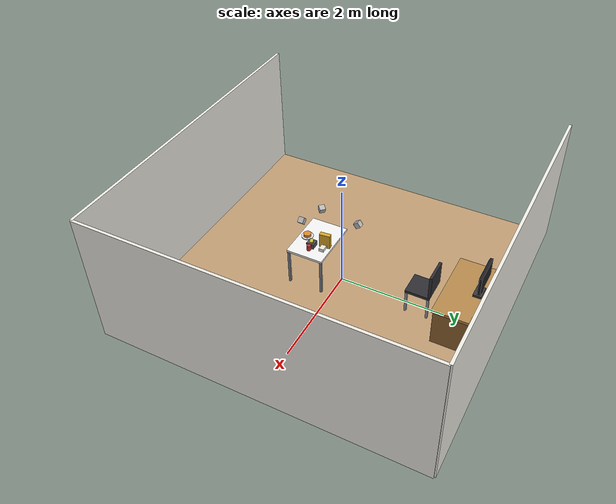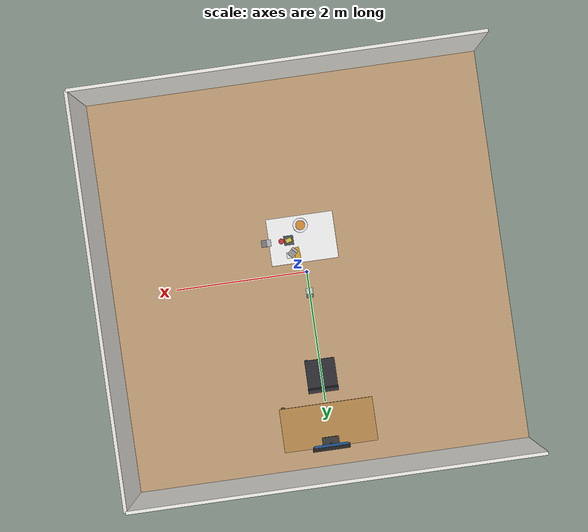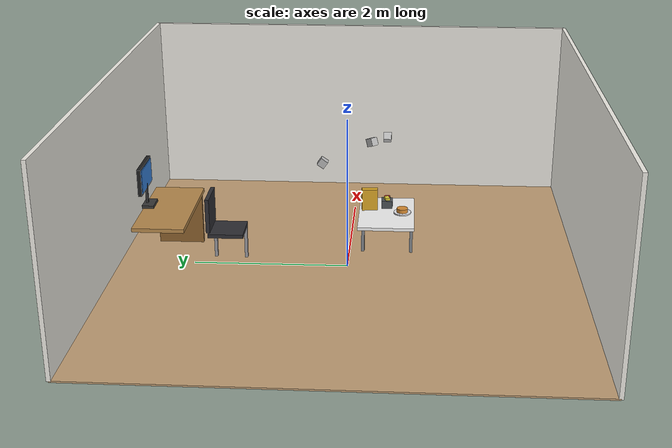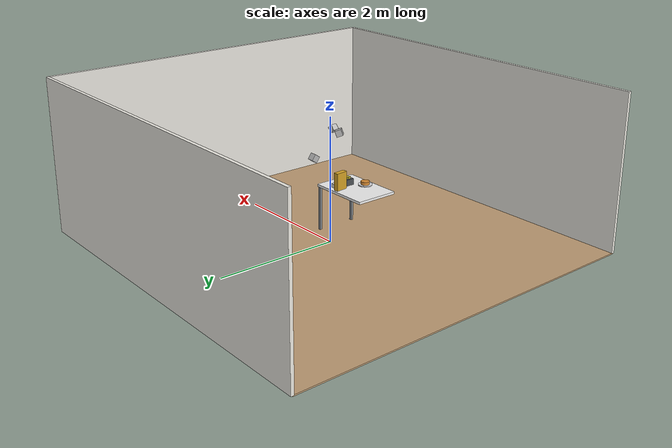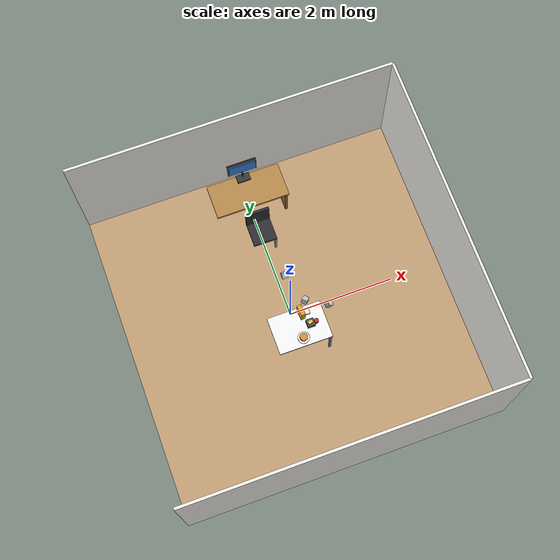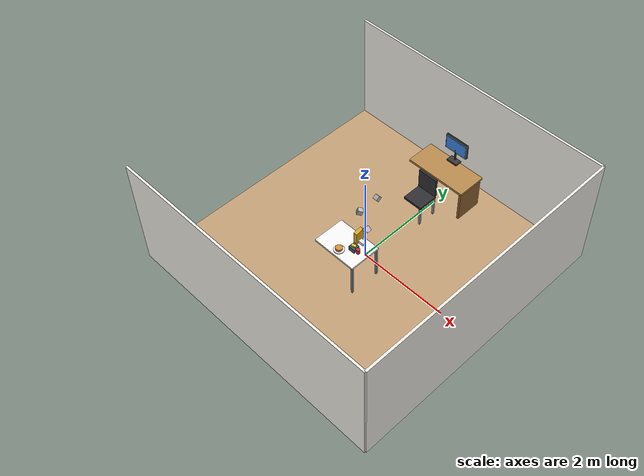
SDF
<sdf version="1.10">
 <world name="bps_room">
  <model name="floor">
   <static>true</static>
   <link name="link">
    <collision name="collision"><geometry><box><size>6 6 0.02</size></box></geometry></collision>
    <visual name="visual">
     <geometry><box><size>6 6 0.02</size></box></geometry>
     <material>
      <ambient>0.75999999 0.620000005 0.460000008 1</ambient>
      <diffuse>0.75999999 0.620000005 0.460000008 1</diffuse>
     </material>
    </visual>
    <inertial>
     <mass>1</mass>
     <inertia><ixx>1</ixx><ixy>0</ixy><ixz>0</ixz><iyy>1</iyy><iyz>0</iyz><izz>1</izz></inertia>
    </inertial>
   </link>
  </model>
  <model name="wall_north">
   <static>true</static>
   <pose>0 3 1.25 0 0 0</pose>
   <link name="link">
    <collision name="collision">
     <geometry><box><size>6 0.050000000000000003 2.5</size></box></geometry>
    </collision>
    <visual name="visual">
     <geometry><box><size>6 0.050000000000000003 2.5</size></box></geometry>
     <material>
      <ambient>0.949999988 0.939999998 0.910000026 1</ambient>
      <diffuse>0.949999988 0.939999998 0.910000026 1</diffuse>
     </material>
    </visual>
    <inertial>
     <mass>1</mass>
     <inertia><ixx>1</ixx><ixy>0</ixy><ixz>0</ixz><iyy>1</iyy><iyz>0</iyz><izz>1</izz></inertia>
    </inertial>
   </link>
  </model>
  <model name="wall_south">
   <static>true</static>
   <pose>0 -3 1.25 0 0 0</pose>
   <link name="link">
    <collision name="collision">
     <geometry><box><size>6 0.050000000000000003 2.5</size></box></geometry>
    </collision>
    <visual name="visual">
     <geometry><box><size>6 0.050000000000000003 2.5</size></box></geometry>
     <material>
      <ambient>0.949999988 0.939999998 0.910000026 1</ambient>
      <diffuse>0.949999988 0.939999998 0.910000026 1</diffuse>
     </material>
    </visual>
    <inertial>
     <mass>1</mass>
     <inertia><ixx>1</ixx><ixy>0</ixy><ixz>0</ixz><iyy>1</iyy><iyz>0</iyz><izz>1</izz></inertia>
    </inertial>
   </link>
  </model>
  <model name="wall_east">
   <static>true</static>
   <pose>3 0 1.25 0 0 0</pose>
   <link name="link">
    <collision name="collision">
     <geometry><box><size>0.050000000000000003 6 2.5</size></box></geometry>
    </collision>
    <visual name="visual">
     <geometry><box><size>0.050000000000000003 6 2.5</size></box></geometry>
     <material>
      <ambient>0.930000007 0.920000017 0.889999986 1</ambient>
      <diffuse>0.930000007 0.920000017 0.889999986 1</diffuse>
     </material>
    </visual>
    <inertial>
     <mass>1</mass>
     <inertia><ixx>1</ixx><ixy>0</ixy><ixz>0</ixz><iyy>1</iyy><iyz>0</iyz><izz>1</izz></inertia>
    </inertial>
   </link>
  </model>
  <model name="desk">
   <static>true</static>
   <pose>0 2.2999999999999998 0.75 0 0 0</pose>
   <link name="link">
    <collision name="collision">
     <geometry><box><size>1.3999999999999999 0.65000000000000002 0.050000000000000003</size></box></geometry>
    </collision>
    <visual name="visual">
     <geometry><box><size>1.3999999999999999 0.65000000000000002 0.050000000000000003</size></box></geometry>
     <material>
      <ambient>0.720000029 0.540000021 0.300000012 1</ambient>
      <diffuse>0.720000029 0.540000021 0.300000012 1</diffuse>
     </material>
    </visual>
    <inertial>
     <mass>1</mass>
     <inertia><ixx>1</ixx><ixy>0</ixy><ixz>0</ixz><iyy>1</iyy><iyz>0</iyz><izz>1</izz></inertia>
    </inertial>
   </link>
  </model>
  <model name="desk_leg_right">
   <static>true</static>
   <pose>0.65000000000000002 2.2999999999999998 0.375 0 0 0</pose>
   <link name="link">
    <collision name="collision">
     <geometry><box><size>0.050000000000000003 0.59999999999999998 0.75</size></box></geometry>
    </collision>
    <visual name="visual">
     <geometry><box><size>0.050000000000000003 0.59999999999999998 0.75</size></box></geometry>
     <material>
      <ambient>0.550000012 0.379999995 0.180000007 1</ambient>
      <diffuse>0.550000012 0.379999995 0.180000007 1</diffuse>
     </material>
    </visual>
    <inertial>
     <mass>1</mass>
     <inertia><ixx>1</ixx><ixy>0</ixy><ixz>0</ixz><iyy>1</iyy><iyz>0</iyz><izz>1</izz></inertia>
    </inertial>
   </link>
  </model>
  <model name="monitor_base">
   <static>true</static>
   <pose>0 2.5499999999999998 0.81999999999999995 0 0 0</pose>
   <link name="link">
    <collision name="collision">
     <geometry><box><size>0.25 0.14999999999999999 0.040000000000000001</size></box></geometry>
    </collision>
    <visual name="visual">
     <geometry><box><size>0.25 0.14999999999999999 0.040000000000000001</size></box></geometry>
     <material>
      <ambient>0.219999999 0.219999999 0.219999999 1</ambient>
      <diffuse>0.219999999 0.219999999 0.219999999 1</diffuse>
     </material>
    </visual>
    <inertial>
     <mass>1</mass>
     <inertia><ixx>1</ixx><ixy>0</ixy><ixz>0</ixz><iyy>1</iyy><iyz>0</iyz><izz>1</izz></inertia>
    </inertial>
   </link>
  </model>
  <model name="monitor_stand">
   <static>true</static>
   <pose>0 2.5800000000000001 0.96999999999999997 0 0 0</pose>
   <link name="link">
    <collision name="collision">
     <geometry><box><size>0.029999999999999999 0.029999999999999999 0.26000000000000001</size></box></geometry>
    </collision>
    <visual name="visual">
     <geometry><box><size>0.029999999999999999 0.029999999999999999 0.26000000000000001</size></box></geometry>
     <material>
      <ambient>0.219999999 0.219999999 0.219999999 1</ambient>
      <diffuse>0.219999999 0.219999999 0.219999999 1</diffuse>
     </material>
    </visual>
    <inertial>
     <mass>1</mass>
     <inertia><ixx>1</ixx><ixy>0</ixy><ixz>0</ixz><iyy>1</iyy><iyz>0</iyz><izz>1</izz></inertia>
    </inertial>
   </link>
  </model>
  <model name="monitor_screen">
   <static>true</static>
   <pose>0 2.6000000000000001 1.2 0 0 0</pose>
   <link name="link">
    <collision name="collision">
     <geometry><box><size>0.55000000000000004 0.050000000000000003 0.34999999999999998</size></box></geometry>
    </collision>
    <visual name="visual">
     <geometry><box><size>0.55000000000000004 0.050000000000000003 0.34999999999999998</size></box></geometry>
     <material>
      <ambient>0.119999997 0.119999997 0.119999997 1</ambient>
      <diffuse>0.119999997 0.119999997 0.119999997 1</diffuse>
     </material>
    </visual>
    <inertial>
     <mass>1</mass>
     <inertia><ixx>1</ixx><ixy>0</ixy><ixz>0</ixz><iyy>1</iyy><iyz>0</iyz><izz>1</izz></inertia>
    </inertial>
   </link>
  </model>
  <model name="monitor_face">
   <static>true</static>
   <pose>0 2.5699999999999998 1.2 0 0 0</pose>
   <link name="link">
    <visual name="visual">
     <geometry><box><size>0.5 0.01 0.29999999999999999</size></box></geometry>
     <material>
      <ambient>0.219999999 0.519999981 0.879999995 1</ambient>
      <diffuse>0.219999999 0.519999981 0.879999995 1</diffuse>
      <emissive>0.100000001 0.25 0.449999988 1</emissive>
     </material>
    </visual>
    <inertial>
     <mass>1</mass>
     <inertia><ixx>1</ixx><ixy>0</ixy><ixz>0</ixz><iyy>1</iyy><iyz>0</iyz><izz>1</izz></inertia>
    </inertial>
   </link>
  </model>
  <model name="chair_seat">
   <static>true</static>
   <pose>0 1.55 0.47999999999999998 0 0 0</pose>
   <link name="link">
    <collision name="collision">
     <geometry><box><size>0.45000000000000001 0.45000000000000001 0.050000000000000003</size></box></geometry>
    </collision>
    <visual name="visual">
     <geometry><box><size>0.45000000000000001 0.45000000000000001 0.050000000000000003</size></box></geometry>
     <material>
      <ambient>0.180000007 0.180000007 0.200000003 1</ambient>
      <diffuse>0.180000007 0.180000007 0.200000003 1</diffuse>
     </material>
    </visual>
    <inertial>
     <mass>1</mass>
     <inertia><ixx>1</ixx><ixy>0</ixy><ixz>0</ixz><iyy>1</iyy><iyz>0</iyz><izz>1</izz></inertia>
    </inertial>
   </link>
  </model>
  <model name="chair_back">
   <static>true</static>
   <pose>0 1.77 0.75 0 0 0</pose>
   <link name="link">
    <collision name="collision">
     <geometry><box><size>0.45000000000000001 0.050000000000000003 0.45000000000000001</size></box></geometry>
    </collision>
    <visual name="visual">
     <geometry><box><size>0.45000000000000001 0.050000000000000003 0.45000000000000001</size></box></geometry>
     <material>
      <ambient>0.180000007 0.180000007 0.200000003 1</ambient>
      <diffuse>0.180000007 0.180000007 0.200000003 1</diffuse>
     </material>
    </visual>
    <inertial>
     <mass>1</mass>
     <inertia><ixx>1</ixx><ixy>0</ixy><ixz>0</ixz><iyy>1</iyy><iyz>0</iyz><izz>1</izz></inertia>
    </inertial>
   </link>
  </model>
  <model name="chair_leg_fr">
   <static>true</static>
   <pose>0.20000000000000001 1.3500000000000001 0.23999999999999999 0 0 0</pose>
   <link name="link">
    <collision name="collision">
     <geometry><box><size>0.040000000000000001 0.040000000000000001 0.47999999999999998</size></box></geometry>
    </collision>
    <visual name="visual">
     <geometry><box><size>0.040000000000000001 0.040000000000000001 0.47999999999999998</size></box></geometry>
     <material>
      <ambient>0.600000024 0.600000024 0.620000005 1</ambient>
      <diffuse>0.600000024 0.600000024 0.620000005 1</diffuse>
     </material>
    </visual>
    <inertial>
     <mass>1</mass>
     <inertia><ixx>1</ixx><ixy>0</ixy><ixz>0</ixz><iyy>1</iyy><iyz>0</iyz><izz>1</izz></inertia>
    </inertial>
   </link>
  </model>
  <model name="chair_leg_br">
   <static>true</static>
   <pose>0.20000000000000001 1.75 0.23999999999999999 0 0 0</pose>
   <link name="link">
    <collision name="collision">
     <geometry><box><size>0.040000000000000001 0.040000000000000001 0.47999999999999998</size></box></geometry>
    </collision>
    <visual name="visual">
     <geometry><box><size>0.040000000000000001 0.040000000000000001 0.47999999999999998</size></box></geometry>
     <material>
      <ambient>0.600000024 0.600000024 0.620000005 1</ambient>
      <diffuse>0.600000024 0.600000024 0.620000005 1</diffuse>
     </material>
    </visual>
    <inertial>
     <mass>1</mass>
     <inertia><ixx>1</ixx><ixy>0</ixy><ixz>0</ixz><iyy>1</iyy><iyz>0</iyz><izz>1</izz></inertia>
    </inertial>
   </link>
  </model>
  <model name="experiment_table">
   <static>true</static>
   <pose>0 -0.5 0.75 0 0 0</pose>
   <link name="link">
    <collision name="collision">
     <geometry><box><size>1 0.69999999999999996 0.040000000000000001</size></box></geometry>
    </collision>
    <visual name="visual">
     <geometry><box><size>1 0.69999999999999996 0.040000000000000001</size></box></geometry>
     <material>
      <ambient>0.959999979 0.959999979 0.959999979 1</ambient>
      <diffuse>0.959999979 0.959999979 0.959999979 1</diffuse>
     </material>
    </visual>
    <inertial>
     <mass>1</mass>
     <inertia><ixx>1</ixx><ixy>0</ixy><ixz>0</ixz><iyy>1</iyy><iyz>0</iyz><izz>1</izz></inertia>
    </inertial>
   </link>
  </model>
  <model name="table_leg_fr">
   <static>true</static>
   <pose>0.46999999999999997 -0.81999999999999995 0.375 0 0 0</pose>
   <link name="link">
    <collision name="collision">
     <geometry><box><size>0.040000000000000001 0.040000000000000001 0.75</size></box></geometry>
    </collision>
    <visual name="visual">
     <geometry><box><size>0.040000000000000001 0.040000000000000001 0.75</size></box></geometry>
     <material>
      <ambient>0.5 0.519999981 0.540000021 1</ambient>
      <diffuse>0.5 0.519999981 0.540000021 1</diffuse>
     </material>
    </visual>
    <inertial>
     <mass>1</mass>
     <inertia><ixx>1</ixx><ixy>0</ixy><ixz>0</ixz><iyy>1</iyy><iyz>0</iyz><izz>1</izz></inertia>
    </inertial>
   </link>
  </model>
  <model name="table_leg_br">
   <static>true</static>
   <pose>0.46999999999999997 -0.17999999999999999 0.375 0 0 0</pose>
   <link name="link">
    <collision name="collision">
     <geometry><box><size>0.040000000000000001 0.040000000000000001 0.75</size></box></geometry>
    </collision>
    <visual name="visual">
     <geometry><box><size>0.040000000000000001 0.040000000000000001 0.75</size></box></geometry>
     <material>
      <ambient>0.5 0.519999981 0.540000021 1</ambient>
      <diffuse>0.5 0.519999981 0.540000021 1</diffuse>
     </material>
    </visual>
    <inertial>
     <mass>1</mass>
     <inertia><ixx>1</ixx><ixy>0</ixy><ixz>0</ixz><iyy>1</iyy><iyz>0</iyz><izz>1</izz></inertia>
    </inertial>
   </link>
  </model>
  <model name="obj_cereal_box">
   <static>false</static>
   <pose>0.10000000000000001 -0.28000000000000003 0.91000000000000003 0 0 0.099999999999999978</pose>
   <link name="link">
    <collision name="collision">
     <geometry><box><size>0.080000000000000002 0.20000000000000001 0.28000000000000003</size></box></geometry>
    </collision>
    <visual name="visual">
     <geometry><box><size>0.080000000000000002 0.20000000000000001 0.28000000000000003</size></box></geometry>
     <material>
      <ambient>0.850000024 0.649999976 0.150000006 1</ambient>
      <diffuse>0.850000024 0.649999976 0.150000006 1</diffuse>
      <specular>0.200000003 0.200000003 0.200000003 1</specular>
     </material>
     <plugin name="gz::sim::systems::Label" filename="gz-sim-label-system"><label>1</label></plugin>
    </visual>
    <inertial>
     <mass>1</mass>
     <inertia><ixx>1</ixx><ixy>0</ixy><ixz>0</ixz><iyy>1</iyy><iyz>0</iyz><izz>1</izz></inertia>
    </inertial>
    <sensor name="obj_cereal_box_contact_sensor" type="contact">
     <contact><collision>collision</collision></contact>
     <update_rate>30</update_rate>
     <always_on>true</always_on>
    </sensor>
   </link>
  </model>
  <model name="obj_tissue_box">
   <static>false</static>
   <pose>0.20000000000000001 -0.28000000000000003 0.80000000000000004 0 0 0</pose>
   <link name="link">
    <collision name="collision">
     <geometry><box><size>0.12 0.089999999999999997 0.059999999999999998</size></box></geometry>
    </collision>
    <visual name="visual">
     <geometry><box><size>0.12 0.089999999999999997 0.059999999999999998</size></box></geometry>
     <material>
      <ambient>0.920000017 0.920000017 0.879999995 1</ambient>
      <diffuse>0.920000017 0.920000017 0.879999995 1</diffuse>
      <specular>0.200000003 0.200000003 0.200000003 1</specular>
     </material>
     <plugin name="gz::sim::systems::Label" filename="gz-sim-label-system"><label>2</label></plugin>
    </visual>
    <inertial>
     <mass>1</mass>
     <inertia><ixx>1</ixx><ixy>0</ixy><ixz>0</ixz><iyy>1</iyy><iyz>0</iyz><izz>1</izz></inertia>
    </inertial>
    <sensor name="obj_tissue_box_contact_sensor" type="contact">
     <contact><collision>collision</collision></contact>
     <update_rate>30</update_rate>
     <always_on>true</always_on>
    </sensor>
   </link>
  </model>
  <model name="obj_mug">
   <static>false</static>
   <pose>0.31 -0.5 0.81999999999999995 0 0 0</pose>
   <link name="link">
    <collision name="collision">
     <geometry>
      <cylinder><radius>0.040000000000000001</radius><length>0.10000000000000001</length></cylinder>
     </geometry>
    </collision>
    <visual name="visual">
     <geometry>
      <cylinder><radius>0.040000000000000001</radius><length>0.10000000000000001</length></cylinder>
     </geometry>
     <material>
      <ambient>0.779999971 0.180000007 0.200000003 1</ambient>
      <diffuse>0.779999971 0.180000007 0.200000003 1</diffuse>
      <specular>0.300000012 0.300000012 0.300000012 1</specular>
     </material>
     <plugin name="gz::sim::systems::Label" filename="gz-sim-label-system"><label>6</label></plugin>
    </visual>
    <inertial>
     <mass>1</mass>
     <inertia><ixx>1</ixx><ixy>0</ixy><ixz>0</ixz><iyy>1</iyy><iyz>0</iyz><izz>1</izz></inertia>
    </inertial>
    <sensor name="obj_mug_contact_sensor" type="contact">
     <contact><collision>collision</collision></contact>
     <update_rate>30</update_rate>
     <always_on>true</always_on>
    </sensor>
   </link>
  </model>
  <model name="obj_bowl">
   <static>false</static>
   <pose>0 -0.69999999999999996 0.81000000000000005 0 0 0</pose>
   <link name="link">
    <collision name="collision">
     <geometry>
      <cylinder><radius>0.070000000000000007</radius><length>0.050000000000000003</length></cylinder>
     </geometry>
    </collision>
    <visual name="visual">
     <geometry>
      <cylinder><radius>0.070000000000000007</radius><length>0.050000000000000003</length></cylinder>
     </geometry>
     <material>
      <ambient>0.850000024 0.550000012 0.200000003 1</ambient>
      <diffuse>0.850000024 0.550000012 0.200000003 1</diffuse>
      <specular>0.300000012 0.300000012 0.300000012 1</specular>
     </material>
     <plugin name="gz::sim::systems::Label" filename="gz-sim-label-system"><label>7</label></plugin>
    </visual>
    <inertial>
     <mass>1</mass>
     <inertia><ixx>1</ixx><ixy>0</ixy><ixz>0</ixz><iyy>1</iyy><iyz>0</iyz><izz>1</izz></inertia>
    </inertial>
    <sensor name="obj_bowl_contact_sensor" type="contact">
     <contact><collision>collision</collision></contact>
     <update_rate>30</update_rate>
     <always_on>true</always_on>
    </sensor>
   </link>
  </model>
  <model name="obj_plate">
   <static>false</static>
   <pose>0 -0.69999999999999996 0.77749999999999997 0 0 0</pose>
   <link name="link">
    <collision name="collision">
     <geometry><cylinder><radius>0.11</radius><length>0.014999999999999999</length></cylinder></geometry>
    </collision>
    <visual name="visual">
     <geometry><cylinder><radius>0.11</radius><length>0.014999999999999999</length></cylinder></geometry>
     <material>
      <ambient>0.899999976 0.899999976 0.920000017 1</ambient>
      <diffuse>0.899999976 0.899999976 0.920000017 1</diffuse>
      <specular>0.300000012 0.300000012 0.300000012 1</specular>
     </material>
     <plugin name="gz::sim::systems::Label" filename="gz-sim-label-system"><label>8</label></plugin>
    </visual>
    <inertial>
     <mass>1</mass>
     <inertia><ixx>1</ixx><ixy>0</ixy><ixz>0</ixz><iyy>1</iyy><iyz>0</iyz><izz>1</izz></inertia>
    </inertial>
    <sensor name="obj_plate_contact_sensor" type="contact">
     <contact><collision>collision</collision></contact>
     <update_rate>30</update_rate>
     <always_on>true</always_on>
    </sensor>
   </link>
  </model>
  <model name="obj_sponge">
   <static>false</static>
   <pose>0.20000000000000001 -0.5 0.88500000000000001 0 0 0.3000000000000001</pose>
   <link name="link">
    <collision name="collision">
     <geometry><box><size>0.089999999999999997 0.059999999999999998 0.029999999999999999</size></box></geometry>
    </collision>
    <visual name="visual">
     <geometry><box><size>0.089999999999999997 0.059999999999999998 0.029999999999999999</size></box></geometry>
     <material>
      <ambient>0.850000024 0.779999971 0.200000003 1</ambient>
      <diffuse>0.850000024 0.779999971 0.200000003 1</diffuse>
      <specular>0.100000001 0.100000001 0.100000001 1</specular>
     </material>
     <plugin name="gz::sim::systems::Label" filename="gz-sim-label-system"><label>12</label></plugin>
    </visual>
    <inertial>
     <mass>1</mass>
     <inertia><ixx>1</ixx><ixy>0</ixy><ixz>0</ixz><iyy>1</iyy><iyz>0</iyz><izz>1</izz></inertia>
    </inertial>
    <sensor name="obj_sponge_contact_sensor" type="contact">
     <contact><collision>collision</collision></contact>
     <update_rate>30</update_rate>
     <always_on>true</always_on>
    </sensor>
   </link>
  </model>
  <model name="obj_container">
   <static>false</static>
   <pose>0.20000000000000001 -0.5 0.81999999999999995 0 0 0</pose>
   <link name="link">
    <collision name="collision">
     <geometry><box><size>0.14000000000000001 0.14000000000000001 0.10000000000000001</size></box></geometry>
    </collision>
    <visual name="visual">
     <geometry><box><size>0.14000000000000001 0.14000000000000001 0.10000000000000001</size></box></geometry>
     <material>
      <ambient>0.300000012 0.319999993 0.340000004 1</ambient>
      <diffuse>0.300000012 0.319999993 0.340000004 1</diffuse>
      <specular>0.200000003 0.200000003 0.200000003 1</specular>
     </material>
     <plugin name="gz::sim::systems::Label" filename="gz-sim-label-system"><label>15</label></plugin>
    </visual>
    <inertial>
     <mass>1</mass>
     <inertia><ixx>1</ixx><ixy>0</ixy><ixz>0</ixz><iyy>1</iyy><iyz>0</iyz><izz>1</izz></inertia>
    </inertial>
    <sensor name="obj_container_contact_sensor" type="contact">
     <contact><collision>collision</collision></contact>
     <update_rate>30</update_rate>
     <always_on>true</always_on>
    </sensor>
   </link>
  </model>
  <model name="depth_camera_v2">
   <static>true</static>
   <pose>0.5941209430198727 -0.43866666666666665 1.6127111097856446 0.0 0.8726646259971648 3.141592653589793</pose>
   <link name="link">
    <pose>0.050000000000000003 0.050000000000000003 0.050000000000000003 0 0 0</pose>
    <inertial>
     <mass>0.10000000000000001</mass>
     <inertia>
      <ixx>0.00016666700000000001</ixx>
      <iyy>0.00016666700000000001</iyy>
      <izz>0.00016666700000000001</izz>
      <ixy>0</ixy>
      <ixz>0</ixz>
      <iyz>0</iyz>
     </inertia>
    </inertial>
    <collision name="collision">
     <geometry><box><size>0.10000000000000001 0.10000000000000001 0.10000000000000001</size></box></geometry>
    </collision>
    <visual name="visual">
     <geometry><box><size>0.10000000000000001 0.10000000000000001 0.10000000000000001</size></box></geometry>
    </visual>
    <sensor name="depth_camera2" type="depth_camera">
     <topic>depth_camera_v2</topic>
     <update_rate>10</update_rate>
     <enable_metrics>false</enable_metrics>
     <camera>
      <horizontal_fov>1.2</horizontal_fov>
      <image>
       <width>640</width>
       <height>480</height>
       <format>R_FLOAT32</format>
       <anti_aliasing>4</anti_aliasing>
      </image>
      <camera_info_topic>__default__</camera_info_topic>
      <triggered>false</triggered>
      <clip><near>0.10000000000000001</near><far>2</far></clip>
      <save enabled="false"><path>__default__</path></save>
      <visibility_mask>4294967295</visibility_mask>
      <noise><type>none</type><mean>0</mean><stddev>0</stddev></noise>
      <distortion><k1>0</k1><k2>0</k2><k3>0</k3><p1>0</p1><p2>0</p2><center>0.5 0.5</center></distortion>
      <lens>
       <type>stereographic</type>
       <scale_to_hfov>true</scale_to_hfov>
       <cutoff_angle>1.5707963267948966</cutoff_angle>
       <env_texture_size>256</env_texture_size>
      </lens>
     </camera>
    </sensor>
    <sensor name="rgb_camera2" type="camera">
     <topic>rgb_camera_v2</topic>
     <update_rate>10</update_rate>
     <enable_metrics>false</enable_metrics>
     <camera>
      <horizontal_fov>1.2</horizontal_fov>
      <image><width>640</width><height>480</height><format>RGB_INT8</format><anti_aliasing>4</anti_aliasing></image>
      <camera_info_topic>__default__</camera_info_topic>
      <triggered>false</triggered>
      <clip><near>0.10000000000000001</near><far>2</far></clip>
      <save enabled="false"><path>__default__</path></save>
      <visibility_mask>4294967295</visibility_mask>
      <noise><type>none</type><mean>0</mean><stddev>0</stddev></noise>
      <distortion><k1>0</k1><k2>0</k2><k3>0</k3><p1>0</p1><p2>0</p2><center>0.5 0.5</center></distortion>
      <lens>
       <type>stereographic</type>
       <scale_to_hfov>true</scale_to_hfov>
       <cutoff_angle>1.5707963267948966</cutoff_angle>
       <env_texture_size>256</env_texture_size>
      </lens>
     </camera>
    </sensor>
    <sensor name="semantic_camera2" type="segmentation_camera">
     <topic>semantic_camera_v2</topic>
     <update_rate>10</update_rate>
     <enable_metrics>false</enable_metrics>
     <camera>
      <horizontal_fov>1.2</horizontal_fov>
      <image><width>640</width><height>480</height></image>
      <clip><near>0.1</near><far>100</far></clip>
      <segmentation_type>semantic</segmentation_type>
     </camera>
    </sensor>
   </link>
  </model>
  <model name="depth_camera_v3">
   <static>true</static>
   <pose>-0.048666666666666615 0.38048537762232515 1.4202431030177127 -0.0 0.6108652381980154 -1.5707963267948968</pose>
   <link name="link">
    <pose>0.050000000000000003 0.050000000000000003 0.050000000000000003 0 0 0</pose>
    <inertial>
     <mass>0.10000000000000001</mass>
     <inertia>
      <ixx>0.00016666700000000001</ixx>
      <iyy>0.00016666700000000001</iyy>
      <izz>0.00016666700000000001</izz>
      <ixy>0</ixy>
      <ixz>0</ixz>
      <iyz>0</iyz>
     </inertia>
    </inertial>
    <collision name="collision">
     <geometry><box><size>0.10000000000000001 0.10000000000000001 0.10000000000000001</size></box></geometry>
    </collision>
    <visual name="visual">
     <geometry><box><size>0.10000000000000001 0.10000000000000001 0.10000000000000001</size></box></geometry>
    </visual>
    <sensor name="depth_camera3" type="depth_camera">
     <topic>depth_camera_v3</topic>
     <update_rate>10</update_rate>
     <enable_metrics>false</enable_metrics>
     <camera>
      <horizontal_fov>1.2</horizontal_fov>
      <image>
       <width>640</width>
       <height>480</height>
       <format>R_FLOAT32</format>
       <anti_aliasing>4</anti_aliasing>
      </image>
      <camera_info_topic>__default__</camera_info_topic>
      <triggered>false</triggered>
      <clip><near>0.10000000000000001</near><far>2</far></clip>
      <save enabled="false"><path>__default__</path></save>
      <visibility_mask>4294967295</visibility_mask>
      <noise><type>none</type><mean>0</mean><stddev>0</stddev></noise>
      <distortion><k1>0</k1><k2>0</k2><k3>0</k3><p1>0</p1><p2>0</p2><center>0.5 0.5</center></distortion>
      <lens>
       <type>stereographic</type>
       <scale_to_hfov>true</scale_to_hfov>
       <cutoff_angle>1.5707963267948966</cutoff_angle>
       <env_texture_size>256</env_texture_size>
      </lens>
     </camera>
    </sensor>
    <sensor name="rgb_camera3" type="camera">
     <topic>rgb_camera_v3</topic>
     <update_rate>10</update_rate>
     <enable_metrics>false</enable_metrics>
     <camera>
      <horizontal_fov>1.2</horizontal_fov>
      <image><width>640</width><height>480</height><format>RGB_INT8</format><anti_aliasing>4</anti_aliasing></image>
      <camera_info_topic>__default__</camera_info_topic>
      <triggered>false</triggered>
      <clip><near>0.10000000000000001</near><far>2</far></clip>
      <save enabled="false"><path>__default__</path></save>
      <visibility_mask>4294967295</visibility_mask>
      <noise><type>none</type><mean>0</mean><stddev>0</stddev></noise>
      <distortion><k1>0</k1><k2>0</k2><k3>0</k3><p1>0</p1><p2>0</p2><center>0.5 0.5</center></distortion>
      <lens>
       <type>stereographic</type>
       <scale_to_hfov>true</scale_to_hfov>
       <cutoff_angle>1.5707963267948966</cutoff_angle>
       <env_texture_size>256</env_texture_size>
      </lens>
     </camera>
    </sensor>
    <sensor name="semantic_camera3" type="segmentation_camera">
     <topic>semantic_camera_v3</topic>
     <update_rate>10</update_rate>
     <enable_metrics>false</enable_metrics>
     <camera>
      <horizontal_fov>1.2</horizontal_fov>
      <image><width>640</width><height>480</height></image>
      <clip><near>0.1</near><far>100</far></clip>
      <segmentation_type>semantic</segmentation_type>
     </camera>
    </sensor>
   </link>
  </model>
  <model name="depth_camera_v6">
   <static>true</static>
   <pose>0.16899361971651114 -0.22100638028348887 1.692390025373984 -0.0 1.2217304763960306 -2.356194490192345</pose>
   <link name="link">
    <pose>0.050000000000000003 0.050000000000000003 0.050000000000000003 0 0 0</pose>
    <inertial>
     <mass>0.10000000000000001</mass>
     <inertia>
      <ixx>0.00016666700000000001</ixx>
      <iyy>0.00016666700000000001</iyy>
      <izz>0.00016666700000000001</izz>
      <ixy>0</ixy>
      <ixz>0</ixz>
      <iyz>0</iyz>
     </inertia>
    </inertial>
    <collision name="collision">
     <geometry><box><size>0.10000000000000001 0.10000000000000001 0.10000000000000001</size></box></geometry>
    </collision>
    <visual name="visual">
     <geometry><box><size>0.10000000000000001 0.10000000000000001 0.10000000000000001</size></box></geometry>
    </visual>
    <sensor name="depth_camera6" type="depth_camera">
     <topic>depth_camera_v6</topic>
     <update_rate>10</update_rate>
     <enable_metrics>false</enable_metrics>
     <camera>
      <horizontal_fov>1.2</horizontal_fov>
      <image>
       <width>640</width>
       <height>480</height>
       <format>R_FLOAT32</format>
       <anti_aliasing>4</anti_aliasing>
      </image>
      <camera_info_topic>__default__</camera_info_topic>
      <triggered>false</triggered>
      <clip><near>0.10000000000000001</near><far>2</far></clip>
      <save enabled="false"><path>__default__</path></save>
      <visibility_mask>4294967295</visibility_mask>
      <noise><type>none</type><mean>0</mean><stddev>0</stddev></noise>
      <distortion><k1>0</k1><k2>0</k2><k3>0</k3><p1>0</p1><p2>0</p2><center>0.5 0.5</center></distortion>
      <lens>
       <type>stereographic</type>
       <scale_to_hfov>true</scale_to_hfov>
       <cutoff_angle>1.5707963267948966</cutoff_angle>
       <env_texture_size>256</env_texture_size>
      </lens>
     </camera>
    </sensor>
    <sensor name="rgb_camera6" type="camera">
     <topic>rgb_camera_v6</topic>
     <update_rate>10</update_rate>
     <enable_metrics>false</enable_metrics>
     <camera>
      <horizontal_fov>1.2</horizontal_fov>
      <image><width>640</width><height>480</height><format>RGB_INT8</format><anti_aliasing>4</anti_aliasing></image>
      <camera_info_topic>__default__</camera_info_topic>
      <triggered>false</triggered>
      <clip><near>0.10000000000000001</near><far>2</far></clip>
      <save enabled="false"><path>__default__</path></save>
      <visibility_mask>4294967295</visibility_mask>
      <noise><type>none</type><mean>0</mean><stddev>0</stddev></noise>
      <distortion><k1>0</k1><k2>0</k2><k3>0</k3><p1>0</p1><p2>0</p2><center>0.5 0.5</center></distortion>
      <lens>
       <type>stereographic</type>
       <scale_to_hfov>true</scale_to_hfov>
       <cutoff_angle>1.5707963267948966</cutoff_angle>
       <env_texture_size>256</env_texture_size>
      </lens>
     </camera>
    </sensor>
    <sensor name="semantic_camera6" type="segmentation_camera">
     <topic>semantic_camera_v6</topic>
     <update_rate>10</update_rate>
     <enable_metrics>false</enable_metrics>
     <camera>
      <horizontal_fov>1.2</horizontal_fov>
      <image><width>640</width><height>480</height></image>
      <clip><near>0.1</near><far>100</far></clip>
      <segmentation_type>semantic</segmentation_type>
     </camera>
    </sensor>
   </link>
  </model>
 </world>
</sdf>
